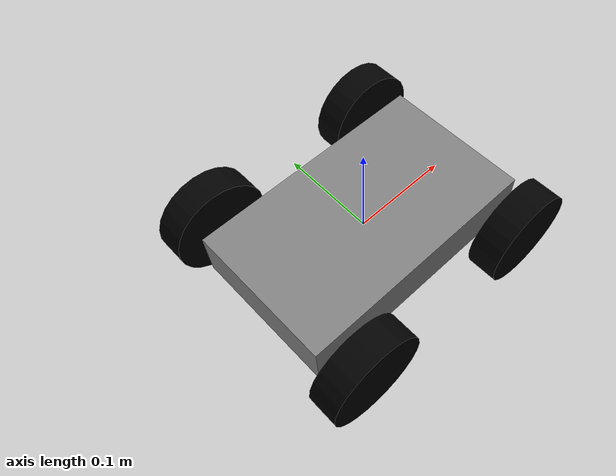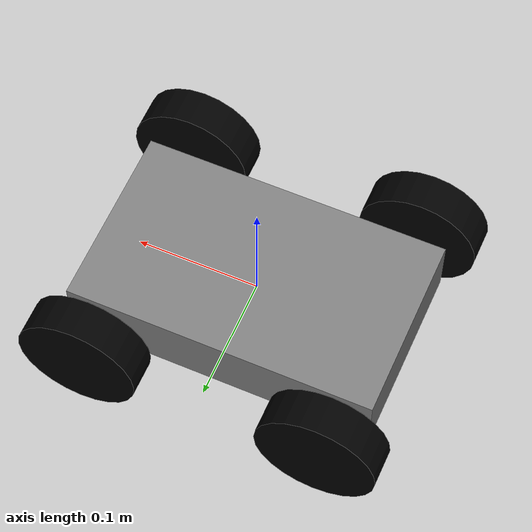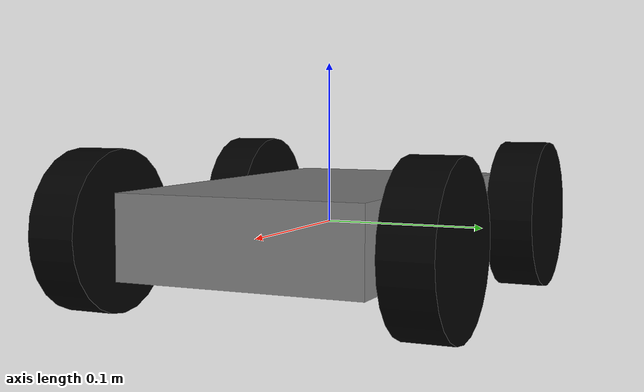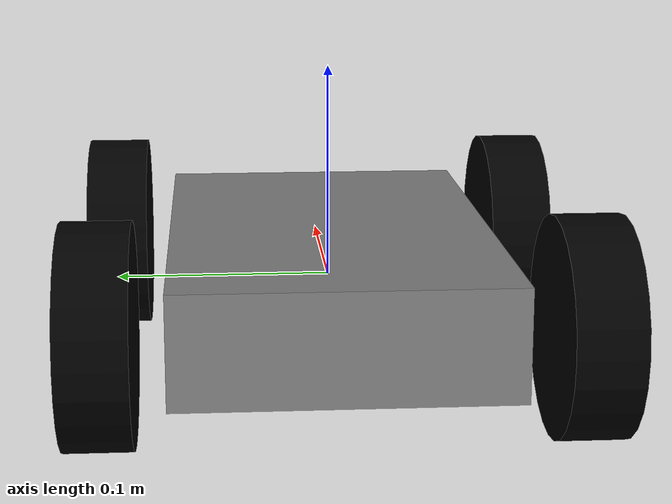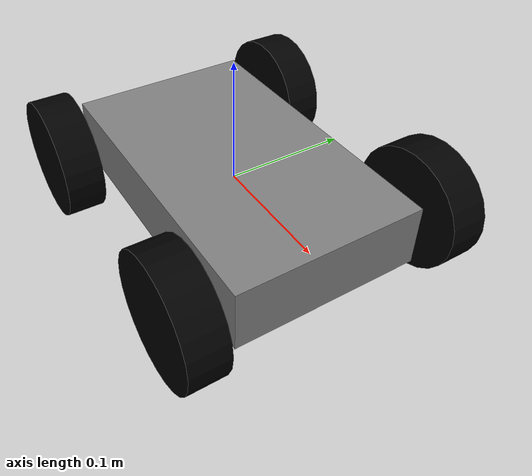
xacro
<?xml version="1.0"?>
<robot xmlns:xacro="http://www.ros.org/wiki/xacro" name="mecanum_bot">

  <link name="base_link">
    <visual>
      <geometry>
        <box size="0.25 0.15 0.05"/>
      </geometry>
      <material name="gray"><color rgba="0.5 0.5 0.5 1"/></material>
    </visual>
  </link>

  <link name="imu_link"/>
  <joint name="imu_joint" type="fixed">
    <parent link="base_link"/>
    <child link="imu_link"/>
    <origin xyz="0 0 0" rpy="0 0 0"/>
  </joint>

  <xacro:macro name="wheel" params="name x y">
    <link name="${name}_wheel">
      <visual>
        <geometry>
          <cylinder radius="0.0485" length="0.03"/>
        </geometry>
        <material name="black"><color rgba="0 0 0 1"/></material>
      </visual>
    </link>

    <joint name="${name}_wheel_joint" type="continuous">
      <parent link="base_link"/>
      <child link="${name}_wheel"/>
      <origin xyz="${x} ${y} 0" rpy="-1.57 0 0"/>
      <axis xyz="0 0 1"/>
    </joint>
  </xacro:macro>

  <xacro:wheel name="fl" x="0.0975"  y="0.1035" />
  <xacro:wheel name="rl" x="-0.0975" y="0.1035" />
  <xacro:wheel name="fr" x="0.0975"  y="-0.1035"/>
  <xacro:wheel name="rr" x="-0.0975" y="-0.1035"/>

  <ros2_control name="MecanumTopicBased" type="system">

    <hardware>
      <plugin>mecanum_hardware/MecanumSystem</plugin>
      <param name="port">/dev/ttyACM0</param>
      <param name="baudrate">230400</param>
      <param name="ticks_per_rev">1980</param>
    </hardware>

    <joint name="fl_wheel_joint">
      <command_interface name="velocity"/>
      <state_interface name="position"/>
      <state_interface name="velocity"/>
    </joint>
    <joint name="fr_wheel_joint">
      <command_interface name="velocity"/>
      <state_interface name="position"/>
      <state_interface name="velocity"/>
    </joint>
    <joint name="rl_wheel_joint">
      <command_interface name="velocity"/>
      <state_interface name="position"/>
      <state_interface name="velocity"/>
    </joint>
    <joint name="rr_wheel_joint">
      <command_interface name="velocity"/>
      <state_interface name="position"/>
      <state_interface name="velocity"/>
    </joint>

  </ros2_control>

</robot>
